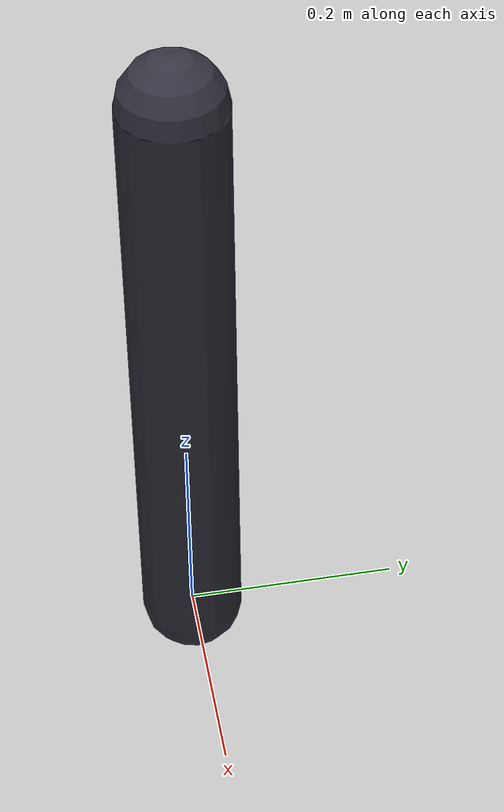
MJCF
<mujoco model="single link pendulum">
	<compiler inertiafromgeom="true"/>

    <!-- Added a white skybox and visual settings for a clean paper figure -->
    <visual>
        <global offwidth="1920" offheight="1080"/>
    </visual>
    <asset>
        <texture type="skybox" builtin="flat" rgb1="1 1 1" rgb2="1 1 1" width="512" height="512"/>
    </asset>

	<default>
		<joint armature="0" damping="1" limited="false"/>
		<geom contype="0" friction="1 0.1 0.1" rgba="0.7 0.7 0 1"/>
		<tendon/>
		<motor ctrlrange="-3 3"/>
	</default>
	<option gravity="0 0 -9.80665" integrator="RK4" timestep="0.001"/>
	<size nstack="3000"/>
	<worldbody>
        <camera name="main_cam" pos="0 -1.6 0" quat="0.707 0.707 0 0" />
        <!-- Added lighting to give the capsule depth -->
        <light directional="true" diffuse="0.8 0.8 0.8" specular="0.2 0.2 0.2" pos="0 -2 5" dir="0 2 -5"/>

        <body name="pole" pos="0 0 0">
            <joint axis="0 1 0" name="hinge" pos="0 0 0" limited="false" frictionloss="0" type="hinge"/>
            <geom fromto="0 0 0 0.001 0 0.6" name="cpole" rgba="0.2 0.2 0.25 1" size="0.049 0.3" density="1000" type="capsule"/>
        </body>
	</worldbody>
	<actuator>
		<motor ctrlrange="-3 3" gear="20" joint="hinge" name="hinge"/>
	</actuator>
</mujoco>
